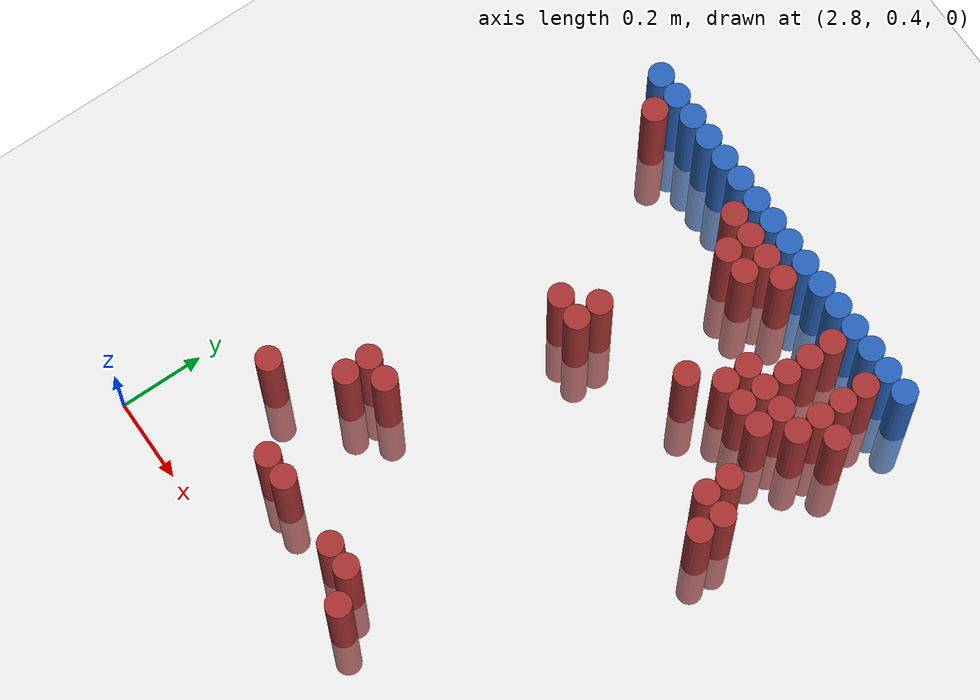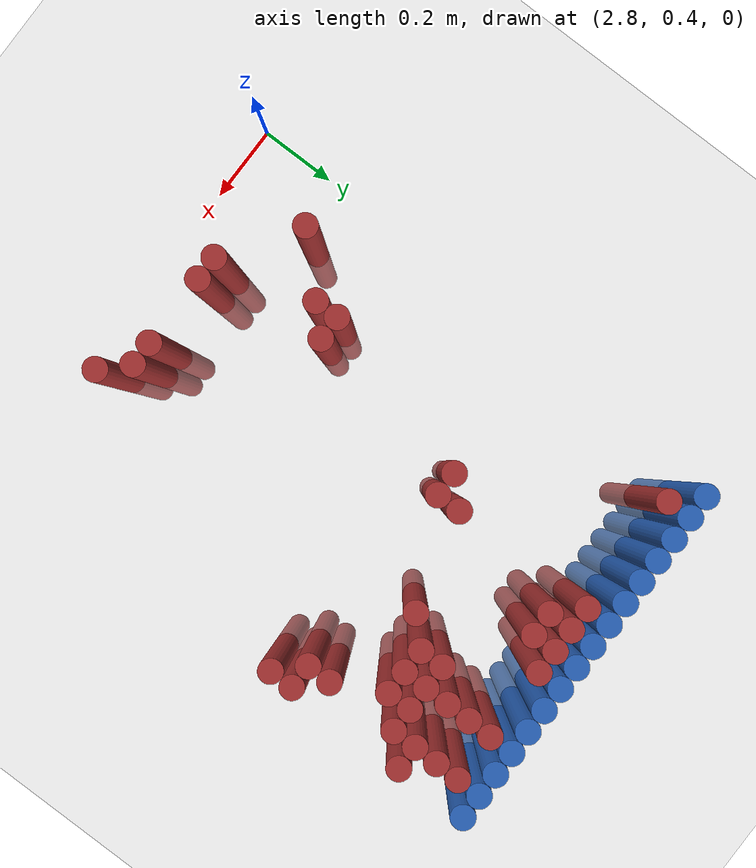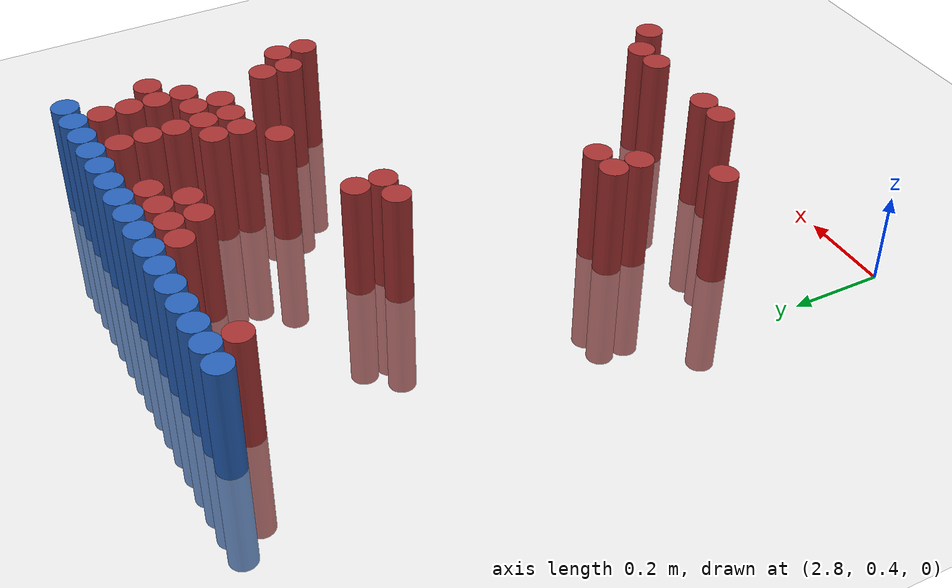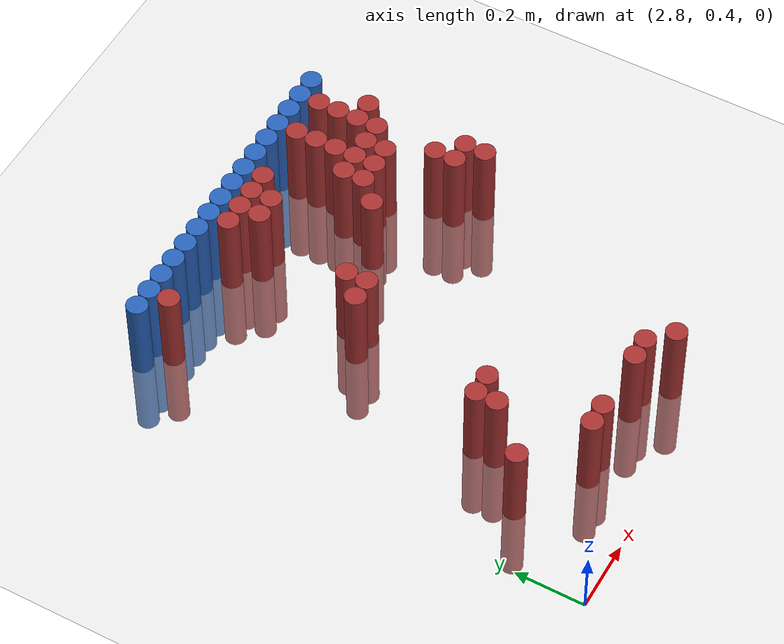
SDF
<sdf version="1.6">
 <world name="default">
  <model name="ground_plane">
   <static>1</static>
   <link name="link">
    <collision name="collision">
     <geometry><plane><normal>0 0 1</normal><size>100 100</size></plane></geometry>
     <surface><friction><ode><mu>100</mu><mu2>50</mu2></ode></friction></surface>
    </collision>
    <visual name="visual">
     <cast_shadows>0</cast_shadows>
     <geometry><plane><normal>0 0 1</normal><size>100 100</size></plane></geometry>
     <material>
      <script><uri>file://media/materials/scripts/gazebo.material</uri><name>Gazebo/Grey</name></script>
     </material>
    </visual>
   </link>
  </model>
  <model name="unit_cylinder_109">
   <static>1</static>
   <pose>2.910000 1.770000 0.000000 0.000000 0.000000 0.000000</pose>
   <link name="link">
    <inertial>
     <mass>1</mass>
     <inertia><ixx>0.145833</ixx><ixy>0</ixy><ixz>0</ixz><iyy>0.145833</iyy><iyz>0</iyz><izz>0.125</izz></inertia>
    </inertial>
    <collision name="collision">
     <geometry><cylinder><radius>0.030000</radius><length>0.5</length></cylinder></geometry>
    </collision>
    <visual name="visual">
     <geometry><cylinder><radius>0.030000</radius><length>0.5</length></cylinder></geometry>
     <material>
      <ambient>0.152000 0.379000 0.720000 1</ambient>
      <diffuse>0.152000 0.379000 0.720000 1</diffuse>
     </material>
     <material>
      <script><name>Gazebo/Grey</name><uri>file://media/materials/scripts/gazebo.material</uri></script>
     </material>
    </visual>
   </link>
  </model>
  <model name="unit_cylinder_110">
   <static>1</static>
   <pose>2.970000 1.770000 0.000000 0.000000 0.000000 0.000000</pose>
   <link name="link">
    <inertial>
     <mass>1</mass>
     <inertia><ixx>0.145833</ixx><ixy>0</ixy><ixz>0</ixz><iyy>0.145833</iyy><iyz>0</iyz><izz>0.125</izz></inertia>
    </inertial>
    <collision name="collision">
     <geometry><cylinder><radius>0.030000</radius><length>0.5</length></cylinder></geometry>
    </collision>
    <visual name="visual">
     <geometry><cylinder><radius>0.030000</radius><length>0.5</length></cylinder></geometry>
     <material>
      <ambient>0.152000 0.379000 0.720000 1</ambient>
      <diffuse>0.152000 0.379000 0.720000 1</diffuse>
     </material>
     <material>
      <script><name>Gazebo/Grey</name><uri>file://media/materials/scripts/gazebo.material</uri></script>
     </material>
    </visual>
   </link>
  </model>
  <model name="unit_cylinder_111">
   <static>1</static>
   <pose>3.030000 1.770000 0.000000 0.000000 0.000000 0.000000</pose>
   <link name="link">
    <inertial>
     <mass>1</mass>
     <inertia><ixx>0.145833</ixx><ixy>0</ixy><ixz>0</ixz><iyy>0.145833</iyy><iyz>0</iyz><izz>0.125</izz></inertia>
    </inertial>
    <collision name="collision">
     <geometry><cylinder><radius>0.030000</radius><length>0.5</length></cylinder></geometry>
    </collision>
    <visual name="visual">
     <geometry><cylinder><radius>0.030000</radius><length>0.5</length></cylinder></geometry>
     <material>
      <ambient>0.152000 0.379000 0.720000 1</ambient>
      <diffuse>0.152000 0.379000 0.720000 1</diffuse>
     </material>
     <material>
      <script><name>Gazebo/Grey</name><uri>file://media/materials/scripts/gazebo.material</uri></script>
     </material>
    </visual>
   </link>
  </model>
  <model name="unit_cylinder_112">
   <static>1</static>
   <pose>3.090000 1.770000 0.000000 0.000000 0.000000 0.000000</pose>
   <link name="link">
    <inertial>
     <mass>1</mass>
     <inertia><ixx>0.145833</ixx><ixy>0</ixy><ixz>0</ixz><iyy>0.145833</iyy><iyz>0</iyz><izz>0.125</izz></inertia>
    </inertial>
    <collision name="collision">
     <geometry><cylinder><radius>0.030000</radius><length>0.5</length></cylinder></geometry>
    </collision>
    <visual name="visual">
     <geometry><cylinder><radius>0.030000</radius><length>0.5</length></cylinder></geometry>
     <material>
      <ambient>0.152000 0.379000 0.720000 1</ambient>
      <diffuse>0.152000 0.379000 0.720000 1</diffuse>
     </material>
     <material>
      <script><name>Gazebo/Grey</name><uri>file://media/materials/scripts/gazebo.material</uri></script>
     </material>
    </visual>
   </link>
  </model>
  <model name="unit_cylinder_113">
   <static>1</static>
   <pose>3.150000 1.770000 0.000000 0.000000 0.000000 0.000000</pose>
   <link name="link">
    <inertial>
     <mass>1</mass>
     <inertia><ixx>0.145833</ixx><ixy>0</ixy><ixz>0</ixz><iyy>0.145833</iyy><iyz>0</iyz><izz>0.125</izz></inertia>
    </inertial>
    <collision name="collision">
     <geometry><cylinder><radius>0.030000</radius><length>0.5</length></cylinder></geometry>
    </collision>
    <visual name="visual">
     <geometry><cylinder><radius>0.030000</radius><length>0.5</length></cylinder></geometry>
     <material>
      <ambient>0.152000 0.379000 0.720000 1</ambient>
      <diffuse>0.152000 0.379000 0.720000 1</diffuse>
     </material>
     <material>
      <script><name>Gazebo/Grey</name><uri>file://media/materials/scripts/gazebo.material</uri></script>
     </material>
    </visual>
   </link>
  </model>
  <model name="unit_cylinder_114">
   <static>1</static>
   <pose>3.210000 1.770000 0.000000 0.000000 0.000000 0.000000</pose>
   <link name="link">
    <inertial>
     <mass>1</mass>
     <inertia><ixx>0.145833</ixx><ixy>0</ixy><ixz>0</ixz><iyy>0.145833</iyy><iyz>0</iyz><izz>0.125</izz></inertia>
    </inertial>
    <collision name="collision">
     <geometry><cylinder><radius>0.030000</radius><length>0.5</length></cylinder></geometry>
    </collision>
    <visual name="visual">
     <geometry><cylinder><radius>0.030000</radius><length>0.5</length></cylinder></geometry>
     <material>
      <ambient>0.152000 0.379000 0.720000 1</ambient>
      <diffuse>0.152000 0.379000 0.720000 1</diffuse>
     </material>
     <material>
      <script><name>Gazebo/Grey</name><uri>file://media/materials/scripts/gazebo.material</uri></script>
     </material>
    </visual>
   </link>
  </model>
  <model name="unit_cylinder_115">
   <static>1</static>
   <pose>3.270000 1.770000 0.000000 0.000000 0.000000 0.000000</pose>
   <link name="link">
    <inertial>
     <mass>1</mass>
     <inertia><ixx>0.145833</ixx><ixy>0</ixy><ixz>0</ixz><iyy>0.145833</iyy><iyz>0</iyz><izz>0.125</izz></inertia>
    </inertial>
    <collision name="collision">
     <geometry><cylinder><radius>0.030000</radius><length>0.5</length></cylinder></geometry>
    </collision>
    <visual name="visual">
     <geometry><cylinder><radius>0.030000</radius><length>0.5</length></cylinder></geometry>
     <material>
      <ambient>0.152000 0.379000 0.720000 1</ambient>
      <diffuse>0.152000 0.379000 0.720000 1</diffuse>
     </material>
     <material>
      <script><name>Gazebo/Grey</name><uri>file://media/materials/scripts/gazebo.material</uri></script>
     </material>
    </visual>
   </link>
  </model>
  <model name="unit_cylinder_116">
   <static>1</static>
   <pose>3.330000 1.770000 0.000000 0.000000 0.000000 0.000000</pose>
   <link name="link">
    <inertial>
     <mass>1</mass>
     <inertia><ixx>0.145833</ixx><ixy>0</ixy><ixz>0</ixz><iyy>0.145833</iyy><iyz>0</iyz><izz>0.125</izz></inertia>
    </inertial>
    <collision name="collision">
     <geometry><cylinder><radius>0.030000</radius><length>0.5</length></cylinder></geometry>
    </collision>
    <visual name="visual">
     <geometry><cylinder><radius>0.030000</radius><length>0.5</length></cylinder></geometry>
     <material>
      <ambient>0.152000 0.379000 0.720000 1</ambient>
      <diffuse>0.152000 0.379000 0.720000 1</diffuse>
     </material>
     <material>
      <script><name>Gazebo/Grey</name><uri>file://media/materials/scripts/gazebo.material</uri></script>
     </material>
    </visual>
   </link>
  </model>
  <model name="unit_cylinder_117">
   <static>1</static>
   <pose>3.390000 1.770000 0.000000 0.000000 0.000000 0.000000</pose>
   <link name="link">
    <inertial>
     <mass>1</mass>
     <inertia><ixx>0.145833</ixx><ixy>0</ixy><ixz>0</ixz><iyy>0.145833</iyy><iyz>0</iyz><izz>0.125</izz></inertia>
    </inertial>
    <collision name="collision">
     <geometry><cylinder><radius>0.030000</radius><length>0.5</length></cylinder></geometry>
    </collision>
    <visual name="visual">
     <geometry><cylinder><radius>0.030000</radius><length>0.5</length></cylinder></geometry>
     <material>
      <ambient>0.152000 0.379000 0.720000 1</ambient>
      <diffuse>0.152000 0.379000 0.720000 1</diffuse>
     </material>
     <material>
      <script><name>Gazebo/Grey</name><uri>file://media/materials/scripts/gazebo.material</uri></script>
     </material>
    </visual>
   </link>
  </model>
  <model name="unit_cylinder_118">
   <static>1</static>
   <pose>3.450000 1.770000 0.000000 0.000000 0.000000 0.000000</pose>
   <link name="link">
    <inertial>
     <mass>1</mass>
     <inertia><ixx>0.145833</ixx><ixy>0</ixy><ixz>0</ixz><iyy>0.145833</iyy><iyz>0</iyz><izz>0.125</izz></inertia>
    </inertial>
    <collision name="collision">
     <geometry><cylinder><radius>0.030000</radius><length>0.5</length></cylinder></geometry>
    </collision>
    <visual name="visual">
     <geometry><cylinder><radius>0.030000</radius><length>0.5</length></cylinder></geometry>
     <material>
      <ambient>0.152000 0.379000 0.720000 1</ambient>
      <diffuse>0.152000 0.379000 0.720000 1</diffuse>
     </material>
     <material>
      <script><name>Gazebo/Grey</name><uri>file://media/materials/scripts/gazebo.material</uri></script>
     </material>
    </visual>
   </link>
  </model>
  <model name="unit_cylinder_119">
   <static>1</static>
   <pose>3.510000 1.770000 0.000000 0.000000 0.000000 0.000000</pose>
   <link name="link">
    <inertial>
     <mass>1</mass>
     <inertia><ixx>0.145833</ixx><ixy>0</ixy><ixz>0</ixz><iyy>0.145833</iyy><iyz>0</iyz><izz>0.125</izz></inertia>
    </inertial>
    <collision name="collision">
     <geometry><cylinder><radius>0.030000</radius><length>0.5</length></cylinder></geometry>
    </collision>
    <visual name="visual">
     <geometry><cylinder><radius>0.030000</radius><length>0.5</length></cylinder></geometry>
     <material>
      <ambient>0.152000 0.379000 0.720000 1</ambient>
      <diffuse>0.152000 0.379000 0.720000 1</diffuse>
     </material>
     <material>
      <script><name>Gazebo/Grey</name><uri>file://media/materials/scripts/gazebo.material</uri></script>
     </material>
    </visual>
   </link>
  </model>
  <model name="unit_cylinder_120">
   <static>1</static>
   <pose>3.570000 1.770000 0.000000 0.000000 0.000000 0.000000</pose>
   <link name="link">
    <inertial>
     <mass>1</mass>
     <inertia><ixx>0.145833</ixx><ixy>0</ixy><ixz>0</ixz><iyy>0.145833</iyy><iyz>0</iyz><izz>0.125</izz></inertia>
    </inertial>
    <collision name="collision">
     <geometry><cylinder><radius>0.030000</radius><length>0.5</length></cylinder></geometry>
    </collision>
    <visual name="visual">
     <geometry><cylinder><radius>0.030000</radius><length>0.5</length></cylinder></geometry>
     <material>
      <ambient>0.152000 0.379000 0.720000 1</ambient>
      <diffuse>0.152000 0.379000 0.720000 1</diffuse>
     </material>
     <material>
      <script><name>Gazebo/Grey</name><uri>file://media/materials/scripts/gazebo.material</uri></script>
     </material>
    </visual>
   </link>
  </model>
  <model name="unit_cylinder_121">
   <static>1</static>
   <pose>3.630000 1.770000 0.000000 0.000000 0.000000 0.000000</pose>
   <link name="link">
    <inertial>
     <mass>1</mass>
     <inertia><ixx>0.145833</ixx><ixy>0</ixy><ixz>0</ixz><iyy>0.145833</iyy><iyz>0</iyz><izz>0.125</izz></inertia>
    </inertial>
    <collision name="collision">
     <geometry><cylinder><radius>0.030000</radius><length>0.5</length></cylinder></geometry>
    </collision>
    <visual name="visual">
     <geometry><cylinder><radius>0.030000</radius><length>0.5</length></cylinder></geometry>
     <material>
      <ambient>0.152000 0.379000 0.720000 1</ambient>
      <diffuse>0.152000 0.379000 0.720000 1</diffuse>
     </material>
     <material>
      <script><name>Gazebo/Grey</name><uri>file://media/materials/scripts/gazebo.material</uri></script>
     </material>
    </visual>
   </link>
  </model>
  <model name="unit_cylinder_122">
   <static>1</static>
   <pose>3.690000 1.770000 0.000000 0.000000 0.000000 0.000000</pose>
   <link name="link">
    <inertial>
     <mass>1</mass>
     <inertia><ixx>0.145833</ixx><ixy>0</ixy><ixz>0</ixz><iyy>0.145833</iyy><iyz>0</iyz><izz>0.125</izz></inertia>
    </inertial>
    <collision name="collision">
     <geometry><cylinder><radius>0.030000</radius><length>0.5</length></cylinder></geometry>
    </collision>
    <visual name="visual">
     <geometry><cylinder><radius>0.030000</radius><length>0.5</length></cylinder></geometry>
     <material>
      <ambient>0.152000 0.379000 0.720000 1</ambient>
      <diffuse>0.152000 0.379000 0.720000 1</diffuse>
     </material>
     <material>
      <script><name>Gazebo/Grey</name><uri>file://media/materials/scripts/gazebo.material</uri></script>
     </material>
    </visual>
   </link>
  </model>
  <model name="unit_cylinder_123">
   <static>1</static>
   <pose>3.750000 1.770000 0.000000 0.000000 0.000000 0.000000</pose>
   <link name="link">
    <inertial>
     <mass>1</mass>
     <inertia><ixx>0.145833</ixx><ixy>0</ixy><ixz>0</ixz><iyy>0.145833</iyy><iyz>0</iyz><izz>0.125</izz></inertia>
    </inertial>
    <collision name="collision">
     <geometry><cylinder><radius>0.030000</radius><length>0.5</length></cylinder></geometry>
    </collision>
    <visual name="visual">
     <geometry><cylinder><radius>0.030000</radius><length>0.5</length></cylinder></geometry>
     <material>
      <ambient>0.152000 0.379000 0.720000 1</ambient>
      <diffuse>0.152000 0.379000 0.720000 1</diffuse>
     </material>
     <material>
      <script><name>Gazebo/Grey</name><uri>file://media/materials/scripts/gazebo.material</uri></script>
     </material>
    </visual>
   </link>
  </model>
  <model name="unit_cylinder_124">
   <static>1</static>
   <pose>3.810000 1.770000 0.000000 0.000000 0.000000 0.000000</pose>
   <link name="link">
    <inertial>
     <mass>1</mass>
     <inertia><ixx>0.145833</ixx><ixy>0</ixy><ixz>0</ixz><iyy>0.145833</iyy><iyz>0</iyz><izz>0.125</izz></inertia>
    </inertial>
    <collision name="collision">
     <geometry><cylinder><radius>0.030000</radius><length>0.5</length></cylinder></geometry>
    </collision>
    <visual name="visual">
     <geometry><cylinder><radius>0.030000</radius><length>0.5</length></cylinder></geometry>
     <material>
      <ambient>0.152000 0.379000 0.720000 1</ambient>
      <diffuse>0.152000 0.379000 0.720000 1</diffuse>
     </material>
     <material>
      <script><name>Gazebo/Grey</name><uri>file://media/materials/scripts/gazebo.material</uri></script>
     </material>
    </visual>
   </link>
  </model>
  <model name="unit_cylinder_132">
   <static>1</static>
   <pose>2.970000 1.710000 0.000000 0.000000 0.000000 0.000000</pose>
   <link name="link">
    <inertial>
     <mass>1</mass>
     <inertia><ixx>0.145833</ixx><ixy>0</ixy><ixz>0</ixz><iyy>0.145833</iyy><iyz>0</iyz><izz>0.125</izz></inertia>
    </inertial>
    <collision name="collision">
     <geometry><cylinder><radius>0.030000</radius><length>0.5</length></cylinder></geometry>
    </collision>
    <visual name="visual">
     <geometry><cylinder><radius>0.030000</radius><length>0.5</length></cylinder></geometry>
     <material>
      <ambient>0.648000 0.192000 0.192000 1</ambient>
      <diffuse>0.648000 0.192000 0.192000 1</diffuse>
     </material>
     <material>
      <script><name>Gazebo/Grey</name><uri>file://media/materials/scripts/gazebo.material</uri></script>
     </material>
    </visual>
   </link>
  </model>
  <model name="unit_cylinder_133">
   <static>1</static>
   <pose>3.270000 1.710000 0.000000 0.000000 0.000000 0.000000</pose>
   <link name="link">
    <inertial>
     <mass>1</mass>
     <inertia><ixx>0.145833</ixx><ixy>0</ixy><ixz>0</ixz><iyy>0.145833</iyy><iyz>0</iyz><izz>0.125</izz></inertia>
    </inertial>
    <collision name="collision">
     <geometry><cylinder><radius>0.030000</radius><length>0.5</length></cylinder></geometry>
    </collision>
    <visual name="visual">
     <geometry><cylinder><radius>0.030000</radius><length>0.5</length></cylinder></geometry>
     <material>
      <ambient>0.648000 0.192000 0.192000 1</ambient>
      <diffuse>0.648000 0.192000 0.192000 1</diffuse>
     </material>
     <material>
      <script><name>Gazebo/Grey</name><uri>file://media/materials/scripts/gazebo.material</uri></script>
     </material>
    </visual>
   </link>
  </model>
  <model name="unit_cylinder_134">
   <static>1</static>
   <pose>3.330000 1.710000 0.000000 0.000000 0.000000 0.000000</pose>
   <link name="link">
    <inertial>
     <mass>1</mass>
     <inertia><ixx>0.145833</ixx><ixy>0</ixy><ixz>0</ixz><iyy>0.145833</iyy><iyz>0</iyz><izz>0.125</izz></inertia>
    </inertial>
    <collision name="collision">
     <geometry><cylinder><radius>0.030000</radius><length>0.5</length></cylinder></geometry>
    </collision>
    <visual name="visual">
     <geometry><cylinder><radius>0.030000</radius><length>0.5</length></cylinder></geometry>
     <material>
      <ambient>0.648000 0.192000 0.192000 1</ambient>
      <diffuse>0.648000 0.192000 0.192000 1</diffuse>
     </material>
     <material>
      <script><name>Gazebo/Grey</name><uri>file://media/materials/scripts/gazebo.material</uri></script>
     </material>
    </visual>
   </link>
  </model>
  <model name="unit_cylinder_135">
   <static>1</static>
   <pose>3.390000 1.710000 0.000000 0.000000 0.000000 0.000000</pose>
   <link name="link">
    <inertial>
     <mass>1</mass>
     <inertia><ixx>0.145833</ixx><ixy>0</ixy><ixz>0</ixz><iyy>0.145833</iyy><iyz>0</iyz><izz>0.125</izz></inertia>
    </inertial>
    <collision name="collision">
     <geometry><cylinder><radius>0.030000</radius><length>0.5</length></cylinder></geometry>
    </collision>
    <visual name="visual">
     <geometry><cylinder><radius>0.030000</radius><length>0.5</length></cylinder></geometry>
     <material>
      <ambient>0.648000 0.192000 0.192000 1</ambient>
      <diffuse>0.648000 0.192000 0.192000 1</diffuse>
     </material>
     <material>
      <script><name>Gazebo/Grey</name><uri>file://media/materials/scripts/gazebo.material</uri></script>
     </material>
    </visual>
   </link>
  </model>
  <model name="unit_cylinder_136">
   <static>1</static>
   <pose>3.450000 1.710000 0.000000 0.000000 0.000000 0.000000</pose>
   <link name="link">
    <inertial>
     <mass>1</mass>
     <inertia><ixx>0.145833</ixx><ixy>0</ixy><ixz>0</ixz><iyy>0.145833</iyy><iyz>0</iyz><izz>0.125</izz></inertia>
    </inertial>
    <collision name="collision">
     <geometry><cylinder><radius>0.030000</radius><length>0.5</length></cylinder></geometry>
    </collision>
    <visual name="visual">
     <geometry><cylinder><radius>0.030000</radius><length>0.5</length></cylinder></geometry>
     <material>
      <ambient>0.648000 0.192000 0.192000 1</ambient>
      <diffuse>0.648000 0.192000 0.192000 1</diffuse>
     </material>
     <material>
      <script><name>Gazebo/Grey</name><uri>file://media/materials/scripts/gazebo.material</uri></script>
     </material>
    </visual>
   </link>
  </model>
  <model name="unit_cylinder_137">
   <static>1</static>
   <pose>3.630000 1.710000 0.000000 0.000000 0.000000 0.000000</pose>
   <link name="link">
    <inertial>
     <mass>1</mass>
     <inertia><ixx>0.145833</ixx><ixy>0</ixy><ixz>0</ixz><iyy>0.145833</iyy><iyz>0</iyz><izz>0.125</izz></inertia>
    </inertial>
    <collision name="collision">
     <geometry><cylinder><radius>0.030000</radius><length>0.5</length></cylinder></geometry>
    </collision>
    <visual name="visual">
     <geometry><cylinder><radius>0.030000</radius><length>0.5</length></cylinder></geometry>
     <material>
      <ambient>0.648000 0.192000 0.192000 1</ambient>
      <diffuse>0.648000 0.192000 0.192000 1</diffuse>
     </material>
     <material>
      <script><name>Gazebo/Grey</name><uri>file://media/materials/scripts/gazebo.material</uri></script>
     </material>
    </visual>
   </link>
  </model>
  <model name="unit_cylinder_138">
   <static>1</static>
   <pose>3.750000 1.710000 0.000000 0.000000 0.000000 0.000000</pose>
   <link name="link">
    <inertial>
     <mass>1</mass>
     <inertia><ixx>0.145833</ixx><ixy>0</ixy><ixz>0</ixz><iyy>0.145833</iyy><iyz>0</iyz><izz>0.125</izz></inertia>
    </inertial>
    <collision name="collision">
     <geometry><cylinder><radius>0.030000</radius><length>0.5</length></cylinder></geometry>
    </collision>
    <visual name="visual">
     <geometry><cylinder><radius>0.030000</radius><length>0.5</length></cylinder></geometry>
     <material>
      <ambient>0.648000 0.192000 0.192000 1</ambient>
      <diffuse>0.648000 0.192000 0.192000 1</diffuse>
     </material>
     <material>
      <script><name>Gazebo/Grey</name><uri>file://media/materials/scripts/gazebo.material</uri></script>
     </material>
    </visual>
   </link>
  </model>
  <model name="unit_cylinder_142">
   <static>1</static>
   <pose>3.330000 1.650000 0.000000 0.000000 0.000000 0.000000</pose>
   <link name="link">
    <inertial>
     <mass>1</mass>
     <inertia><ixx>0.145833</ixx><ixy>0</ixy><ixz>0</ixz><iyy>0.145833</iyy><iyz>0</iyz><izz>0.125</izz></inertia>
    </inertial>
    <collision name="collision">
     <geometry><cylinder><radius>0.030000</radius><length>0.5</length></cylinder></geometry>
    </collision>
    <visual name="visual">
     <geometry><cylinder><radius>0.030000</radius><length>0.5</length></cylinder></geometry>
     <material>
      <ambient>0.648000 0.192000 0.192000 1</ambient>
      <diffuse>0.648000 0.192000 0.192000 1</diffuse>
     </material>
     <material>
      <script><name>Gazebo/Grey</name><uri>file://media/materials/scripts/gazebo.material</uri></script>
     </material>
    </visual>
   </link>
  </model>
  <model name="unit_cylinder_143">
   <static>1</static>
   <pose>3.390000 1.650000 0.000000 0.000000 0.000000 0.000000</pose>
   <link name="link">
    <inertial>
     <mass>1</mass>
     <inertia><ixx>0.145833</ixx><ixy>0</ixy><ixz>0</ixz><iyy>0.145833</iyy><iyz>0</iyz><izz>0.125</izz></inertia>
    </inertial>
    <collision name="collision">
     <geometry><cylinder><radius>0.030000</radius><length>0.5</length></cylinder></geometry>
    </collision>
    <visual name="visual">
     <geometry><cylinder><radius>0.030000</radius><length>0.5</length></cylinder></geometry>
     <material>
      <ambient>0.648000 0.192000 0.192000 1</ambient>
      <diffuse>0.648000 0.192000 0.192000 1</diffuse>
     </material>
     <material>
      <script><name>Gazebo/Grey</name><uri>file://media/materials/scripts/gazebo.material</uri></script>
     </material>
    </visual>
   </link>
  </model>
  <model name="unit_cylinder_144">
   <static>1</static>
   <pose>3.630000 1.650000 0.000000 0.000000 0.000000 0.000000</pose>
   <link name="link">
    <inertial>
     <mass>1</mass>
     <inertia><ixx>0.145833</ixx><ixy>0</ixy><ixz>0</ixz><iyy>0.145833</iyy><iyz>0</iyz><izz>0.125</izz></inertia>
    </inertial>
    <collision name="collision">
     <geometry><cylinder><radius>0.030000</radius><length>0.5</length></cylinder></geometry>
    </collision>
    <visual name="visual">
     <geometry><cylinder><radius>0.030000</radius><length>0.5</length></cylinder></geometry>
     <material>
      <ambient>0.648000 0.192000 0.192000 1</ambient>
      <diffuse>0.648000 0.192000 0.192000 1</diffuse>
     </material>
     <material>
      <script><name>Gazebo/Grey</name><uri>file://media/materials/scripts/gazebo.material</uri></script>
     </material>
    </visual>
   </link>
  </model>
  <model name="unit_cylinder_145">
   <static>1</static>
   <pose>3.750000 1.650000 0.000000 0.000000 0.000000 0.000000</pose>
   <link name="link">
    <inertial>
     <mass>1</mass>
     <inertia><ixx>0.145833</ixx><ixy>0</ixy><ixz>0</ixz><iyy>0.145833</iyy><iyz>0</iyz><izz>0.125</izz></inertia>
    </inertial>
    <collision name="collision">
     <geometry><cylinder><radius>0.030000</radius><length>0.5</length></cylinder></geometry>
    </collision>
    <visual name="visual">
     <geometry><cylinder><radius>0.030000</radius><length>0.5</length></cylinder></geometry>
     <material>
      <ambient>0.648000 0.192000 0.192000 1</ambient>
      <diffuse>0.648000 0.192000 0.192000 1</diffuse>
     </material>
     <material>
      <script><name>Gazebo/Grey</name><uri>file://media/materials/scripts/gazebo.material</uri></script>
     </material>
    </visual>
   </link>
  </model>
  <model name="unit_cylinder_147">
   <static>1</static>
   <pose>3.630000 1.590000 0.000000 0.000000 0.000000 0.000000</pose>
   <link name="link">
    <inertial>
     <mass>1</mass>
     <inertia><ixx>0.145833</ixx><ixy>0</ixy><ixz>0</ixz><iyy>0.145833</iyy><iyz>0</iyz><izz>0.125</izz></inertia>
    </inertial>
    <collision name="collision">
     <geometry><cylinder><radius>0.030000</radius><length>0.5</length></cylinder></geometry>
    </collision>
    <visual name="visual">
     <geometry><cylinder><radius>0.030000</radius><length>0.5</length></cylinder></geometry>
     <material>
      <ambient>0.648000 0.192000 0.192000 1</ambient>
      <diffuse>0.648000 0.192000 0.192000 1</diffuse>
     </material>
     <material>
      <script><name>Gazebo/Grey</name><uri>file://media/materials/scripts/gazebo.material</uri></script>
     </material>
    </visual>
   </link>
  </model>
  <model name="unit_cylinder_148">
   <static>1</static>
   <pose>3.750000 1.590000 0.000000 0.000000 0.000000 0.000000</pose>
   <link name="link">
    <inertial>
     <mass>1</mass>
     <inertia><ixx>0.145833</ixx><ixy>0</ixy><ixz>0</ixz><iyy>0.145833</iyy><iyz>0</iyz><izz>0.125</izz></inertia>
    </inertial>
    <collision name="collision">
     <geometry><cylinder><radius>0.030000</radius><length>0.5</length></cylinder></geometry>
    </collision>
    <visual name="visual">
     <geometry><cylinder><radius>0.030000</radius><length>0.5</length></cylinder></geometry>
     <material>
      <ambient>0.648000 0.192000 0.192000 1</ambient>
      <diffuse>0.648000 0.192000 0.192000 1</diffuse>
     </material>
     <material>
      <script><name>Gazebo/Grey</name><uri>file://media/materials/scripts/gazebo.material</uri></script>
     </material>
    </visual>
   </link>
  </model>
  <model name="unit_cylinder_149">
   <static>1</static>
   <pose>3.810000 1.590000 0.000000 0.000000 0.000000 0.000000</pose>
   <link name="link">
    <inertial>
     <mass>1</mass>
     <inertia><ixx>0.145833</ixx><ixy>0</ixy><ixz>0</ixz><iyy>0.145833</iyy><iyz>0</iyz><izz>0.125</izz></inertia>
    </inertial>
    <collision name="collision">
     <geometry><cylinder><radius>0.030000</radius><length>0.5</length></cylinder></geometry>
    </collision>
    <visual name="visual">
     <geometry><cylinder><radius>0.030000</radius><length>0.5</length></cylinder></geometry>
     <material>
      <ambient>0.648000 0.192000 0.192000 1</ambient>
      <diffuse>0.648000 0.192000 0.192000 1</diffuse>
     </material>
     <material>
      <script><name>Gazebo/Grey</name><uri>file://media/materials/scripts/gazebo.material</uri></script>
     </material>
    </visual>
   </link>
  </model>
  <model name="unit_cylinder_156">
   <static>1</static>
   <pose>3.570000 1.530000 0.000000 0.000000 0.000000 0.000000</pose>
   <link name="link">
    <inertial>
     <mass>1</mass>
     <inertia><ixx>0.145833</ixx><ixy>0</ixy><ixz>0</ixz><iyy>0.145833</iyy><iyz>0</iyz><izz>0.125</izz></inertia>
    </inertial>
    <collision name="collision">
     <geometry><cylinder><radius>0.030000</radius><length>0.5</length></cylinder></geometry>
    </collision>
    <visual name="visual">
     <geometry><cylinder><radius>0.030000</radius><length>0.5</length></cylinder></geometry>
     <material>
      <ambient>0.648000 0.192000 0.192000 1</ambient>
      <diffuse>0.648000 0.192000 0.192000 1</diffuse>
     </material>
     <material>
      <script><name>Gazebo/Grey</name><uri>file://media/materials/scripts/gazebo.material</uri></script>
     </material>
    </visual>
   </link>
  </model>
  <model name="unit_cylinder_157">
   <static>1</static>
   <pose>3.630000 1.530000 0.000000 0.000000 0.000000 0.000000</pose>
   <link name="link">
    <inertial>
     <mass>1</mass>
     <inertia><ixx>0.145833</ixx><ixy>0</ixy><ixz>0</ixz><iyy>0.145833</iyy><iyz>0</iyz><izz>0.125</izz></inertia>
    </inertial>
    <collision name="collision">
     <geometry><cylinder><radius>0.030000</radius><length>0.5</length></cylinder></geometry>
    </collision>
    <visual name="visual">
     <geometry><cylinder><radius>0.030000</radius><length>0.5</length></cylinder></geometry>
     <material>
      <ambient>0.648000 0.192000 0.192000 1</ambient>
      <diffuse>0.648000 0.192000 0.192000 1</diffuse>
     </material>
     <material>
      <script><name>Gazebo/Grey</name><uri>file://media/materials/scripts/gazebo.material</uri></script>
     </material>
    </visual>
   </link>
  </model>
  <model name="unit_cylinder_158">
   <static>1</static>
   <pose>3.690000 1.530000 0.000000 0.000000 0.000000 0.000000</pose>
   <link name="link">
    <inertial>
     <mass>1</mass>
     <inertia><ixx>0.145833</ixx><ixy>0</ixy><ixz>0</ixz><iyy>0.145833</iyy><iyz>0</iyz><izz>0.125</izz></inertia>
    </inertial>
    <collision name="collision">
     <geometry><cylinder><radius>0.030000</radius><length>0.5</length></cylinder></geometry>
    </collision>
    <visual name="visual">
     <geometry><cylinder><radius>0.030000</radius><length>0.5</length></cylinder></geometry>
     <material>
      <ambient>0.648000 0.192000 0.192000 1</ambient>
      <diffuse>0.648000 0.192000 0.192000 1</diffuse>
     </material>
     <material>
      <script><name>Gazebo/Grey</name><uri>file://media/materials/scripts/gazebo.material</uri></script>
     </material>
    </visual>
   </link>
  </model>
  <model name="unit_cylinder_159">
   <static>1</static>
   <pose>3.750000 1.530000 0.000000 0.000000 0.000000 0.000000</pose>
   <link name="link">
    <inertial>
     <mass>1</mass>
     <inertia><ixx>0.145833</ixx><ixy>0</ixy><ixz>0</ixz><iyy>0.145833</iyy><iyz>0</iyz><izz>0.125</izz></inertia>
    </inertial>
    <collision name="collision">
     <geometry><cylinder><radius>0.030000</radius><length>0.5</length></cylinder></geometry>
    </collision>
    <visual name="visual">
     <geometry><cylinder><radius>0.030000</radius><length>0.5</length></cylinder></geometry>
     <material>
      <ambient>0.648000 0.192000 0.192000 1</ambient>
      <diffuse>0.648000 0.192000 0.192000 1</diffuse>
     </material>
     <material>
      <script><name>Gazebo/Grey</name><uri>file://media/materials/scripts/gazebo.material</uri></script>
     </material>
    </visual>
   </link>
  </model>
  <model name="unit_cylinder_164">
   <static>1</static>
   <pose>3.570000 1.470000 0.000000 0.000000 0.000000 0.000000</pose>
   <link name="link">
    <inertial>
     <mass>1</mass>
     <inertia><ixx>0.145833</ixx><ixy>0</ixy><ixz>0</ixz><iyy>0.145833</iyy><iyz>0</iyz><izz>0.125</izz></inertia>
    </inertial>
    <collision name="collision">
     <geometry><cylinder><radius>0.030000</radius><length>0.5</length></cylinder></geometry>
    </collision>
    <visual name="visual">
     <geometry><cylinder><radius>0.030000</radius><length>0.5</length></cylinder></geometry>
     <material>
      <ambient>0.648000 0.192000 0.192000 1</ambient>
      <diffuse>0.648000 0.192000 0.192000 1</diffuse>
     </material>
     <material>
      <script><name>Gazebo/Grey</name><uri>file://media/materials/scripts/gazebo.material</uri></script>
     </material>
    </visual>
   </link>
  </model>
  <model name="unit_cylinder_165">
   <static>1</static>
   <pose>3.630000 1.470000 0.000000 0.000000 0.000000 0.000000</pose>
   <link name="link">
    <inertial>
     <mass>1</mass>
     <inertia><ixx>0.145833</ixx><ixy>0</ixy><ixz>0</ixz><iyy>0.145833</iyy><iyz>0</iyz><izz>0.125</izz></inertia>
    </inertial>
    <collision name="collision">
     <geometry><cylinder><radius>0.030000</radius><length>0.5</length></cylinder></geometry>
    </collision>
    <visual name="visual">
     <geometry><cylinder><radius>0.030000</radius><length>0.5</length></cylinder></geometry>
     <material>
      <ambient>0.648000 0.192000 0.192000 1</ambient>
      <diffuse>0.648000 0.192000 0.192000 1</diffuse>
     </material>
     <material>
      <script><name>Gazebo/Grey</name><uri>file://media/materials/scripts/gazebo.material</uri></script>
     </material>
    </visual>
   </link>
  </model>
  <model name="unit_cylinder_166">
   <static>1</static>
   <pose>3.690000 1.470000 0.000000 0.000000 0.000000 0.000000</pose>
   <link name="link">
    <inertial>
     <mass>1</mass>
     <inertia><ixx>0.145833</ixx><ixy>0</ixy><ixz>0</ixz><iyy>0.145833</iyy><iyz>0</iyz><izz>0.125</izz></inertia>
    </inertial>
    <collision name="collision">
     <geometry><cylinder><radius>0.030000</radius><length>0.5</length></cylinder></geometry>
    </collision>
    <visual name="visual">
     <geometry><cylinder><radius>0.030000</radius><length>0.5</length></cylinder></geometry>
     <material>
      <ambient>0.648000 0.192000 0.192000 1</ambient>
      <diffuse>0.648000 0.192000 0.192000 1</diffuse>
     </material>
     <material>
      <script><name>Gazebo/Grey</name><uri>file://media/materials/scripts/gazebo.material</uri></script>
     </material>
    </visual>
   </link>
  </model>
  <model name="unit_cylinder_173">
   <static>1</static>
   <pose>3.510000 1.410000 0.000000 0.000000 0.000000 0.000000</pose>
   <link name="link">
    <inertial>
     <mass>1</mass>
     <inertia><ixx>0.145833</ixx><ixy>0</ixy><ixz>0</ixz><iyy>0.145833</iyy><iyz>0</iyz><izz>0.125</izz></inertia>
    </inertial>
    <collision name="collision">
     <geometry><cylinder><radius>0.030000</radius><length>0.5</length></cylinder></geometry>
    </collision>
    <visual name="visual">
     <geometry><cylinder><radius>0.030000</radius><length>0.5</length></cylinder></geometry>
     <material>
      <ambient>0.648000 0.192000 0.192000 1</ambient>
      <diffuse>0.648000 0.192000 0.192000 1</diffuse>
     </material>
     <material>
      <script><name>Gazebo/Grey</name><uri>file://media/materials/scripts/gazebo.material</uri></script>
     </material>
    </visual>
   </link>
  </model>
  <model name="unit_cylinder_180">
   <static>1</static>
   <pose>3.270000 1.350000 0.000000 0.000000 0.000000 0.000000</pose>
   <link name="link">
    <inertial>
     <mass>1</mass>
     <inertia><ixx>0.145833</ixx><ixy>0</ixy><ixz>0</ixz><iyy>0.145833</iyy><iyz>0</iyz><izz>0.125</izz></inertia>
    </inertial>
    <collision name="collision">
     <geometry><cylinder><radius>0.030000</radius><length>0.5</length></cylinder></geometry>
    </collision>
    <visual name="visual">
     <geometry><cylinder><radius>0.030000</radius><length>0.5</length></cylinder></geometry>
     <material>
      <ambient>0.648000 0.192000 0.192000 1</ambient>
      <diffuse>0.648000 0.192000 0.192000 1</diffuse>
     </material>
     <material>
      <script><name>Gazebo/Grey</name><uri>file://media/materials/scripts/gazebo.material</uri></script>
     </material>
    </visual>
   </link>
  </model>
  <model name="unit_cylinder_181">
   <static>1</static>
   <pose>3.750000 1.350000 0.000000 0.000000 0.000000 0.000000</pose>
   <link name="link">
    <inertial>
     <mass>1</mass>
     <inertia><ixx>0.145833</ixx><ixy>0</ixy><ixz>0</ixz><iyy>0.145833</iyy><iyz>0</iyz><izz>0.125</izz></inertia>
    </inertial>
    <collision name="collision">
     <geometry><cylinder><radius>0.030000</radius><length>0.5</length></cylinder></geometry>
    </collision>
    <visual name="visual">
     <geometry><cylinder><radius>0.030000</radius><length>0.5</length></cylinder></geometry>
     <material>
      <ambient>0.648000 0.192000 0.192000 1</ambient>
      <diffuse>0.648000 0.192000 0.192000 1</diffuse>
     </material>
     <material>
      <script><name>Gazebo/Grey</name><uri>file://media/materials/scripts/gazebo.material</uri></script>
     </material>
    </visual>
   </link>
  </model>
  <model name="unit_cylinder_187">
   <static>1</static>
   <pose>3.210000 1.290000 0.000000 0.000000 0.000000 0.000000</pose>
   <link name="link">
    <inertial>
     <mass>1</mass>
     <inertia><ixx>0.145833</ixx><ixy>0</ixy><ixz>0</ixz><iyy>0.145833</iyy><iyz>0</iyz><izz>0.125</izz></inertia>
    </inertial>
    <collision name="collision">
     <geometry><cylinder><radius>0.030000</radius><length>0.5</length></cylinder></geometry>
    </collision>
    <visual name="visual">
     <geometry><cylinder><radius>0.030000</radius><length>0.5</length></cylinder></geometry>
     <material>
      <ambient>0.648000 0.192000 0.192000 1</ambient>
      <diffuse>0.648000 0.192000 0.192000 1</diffuse>
     </material>
     <material>
      <script><name>Gazebo/Grey</name><uri>file://media/materials/scripts/gazebo.material</uri></script>
     </material>
    </visual>
   </link>
  </model>
  <model name="unit_cylinder_188">
   <static>1</static>
   <pose>3.270000 1.290000 0.000000 0.000000 0.000000 0.000000</pose>
   <link name="link">
    <inertial>
     <mass>1</mass>
     <inertia><ixx>0.145833</ixx><ixy>0</ixy><ixz>0</ixz><iyy>0.145833</iyy><iyz>0</iyz><izz>0.125</izz></inertia>
    </inertial>
    <collision name="collision">
     <geometry><cylinder><radius>0.030000</radius><length>0.5</length></cylinder></geometry>
    </collision>
    <visual name="visual">
     <geometry><cylinder><radius>0.030000</radius><length>0.5</length></cylinder></geometry>
     <material>
      <ambient>0.648000 0.192000 0.192000 1</ambient>
      <diffuse>0.648000 0.192000 0.192000 1</diffuse>
     </material>
     <material>
      <script><name>Gazebo/Grey</name><uri>file://media/materials/scripts/gazebo.material</uri></script>
     </material>
    </visual>
   </link>
  </model>
  <model name="unit_cylinder_189">
   <static>1</static>
   <pose>3.750000 1.290000 0.000000 0.000000 0.000000 0.000000</pose>
   <link name="link">
    <inertial>
     <mass>1</mass>
     <inertia><ixx>0.145833</ixx><ixy>0</ixy><ixz>0</ixz><iyy>0.145833</iyy><iyz>0</iyz><izz>0.125</izz></inertia>
    </inertial>
    <collision name="collision">
     <geometry><cylinder><radius>0.030000</radius><length>0.5</length></cylinder></geometry>
    </collision>
    <visual name="visual">
     <geometry><cylinder><radius>0.030000</radius><length>0.5</length></cylinder></geometry>
     <material>
      <ambient>0.648000 0.192000 0.192000 1</ambient>
      <diffuse>0.648000 0.192000 0.192000 1</diffuse>
     </material>
     <material>
      <script><name>Gazebo/Grey</name><uri>file://media/materials/scripts/gazebo.material</uri></script>
     </material>
    </visual>
   </link>
  </model>
  <model name="unit_cylinder_190">
   <static>1</static>
   <pose>3.810000 1.290000 0.000000 0.000000 0.000000 0.000000</pose>
   <link name="link">
    <inertial>
     <mass>1</mass>
     <inertia><ixx>0.145833</ixx><ixy>0</ixy><ixz>0</ixz><iyy>0.145833</iyy><iyz>0</iyz><izz>0.125</izz></inertia>
    </inertial>
    <collision name="collision">
     <geometry><cylinder><radius>0.030000</radius><length>0.5</length></cylinder></geometry>
    </collision>
    <visual name="visual">
     <geometry><cylinder><radius>0.030000</radius><length>0.5</length></cylinder></geometry>
     <material>
      <ambient>0.648000 0.192000 0.192000 1</ambient>
      <diffuse>0.648000 0.192000 0.192000 1</diffuse>
     </material>
     <material>
      <script><name>Gazebo/Grey</name><uri>file://media/materials/scripts/gazebo.material</uri></script>
     </material>
    </visual>
   </link>
  </model>
  <model name="unit_cylinder_192">
   <static>1</static>
   <pose>3.810000 1.230000 0.000000 0.000000 0.000000 0.000000</pose>
   <link name="link">
    <inertial>
     <mass>1</mass>
     <inertia><ixx>0.145833</ixx><ixy>0</ixy><ixz>0</ixz><iyy>0.145833</iyy><iyz>0</iyz><izz>0.125</izz></inertia>
    </inertial>
    <collision name="collision">
     <geometry><cylinder><radius>0.030000</radius><length>0.5</length></cylinder></geometry>
    </collision>
    <visual name="visual">
     <geometry><cylinder><radius>0.030000</radius><length>0.5</length></cylinder></geometry>
     <material>
      <ambient>0.648000 0.192000 0.192000 1</ambient>
      <diffuse>0.648000 0.192000 0.192000 1</diffuse>
     </material>
     <material>
      <script><name>Gazebo/Grey</name><uri>file://media/materials/scripts/gazebo.material</uri></script>
     </material>
    </visual>
   </link>
  </model>
  <model name="unit_cylinder_193">
   <static>1</static>
   <pose>3.090000 0.870000 0.000000 0.000000 0.000000 0.000000</pose>
   <link name="link">
    <inertial>
     <mass>1</mass>
     <inertia><ixx>0.145833</ixx><ixy>0</ixy><ixz>0</ixz><iyy>0.145833</iyy><iyz>0</iyz><izz>0.125</izz></inertia>
    </inertial>
    <collision name="collision">
     <geometry><cylinder><radius>0.030000</radius><length>0.5</length></cylinder></geometry>
    </collision>
    <visual name="visual">
     <geometry><cylinder><radius>0.030000</radius><length>0.5</length></cylinder></geometry>
     <material>
      <ambient>0.648000 0.192000 0.192000 1</ambient>
      <diffuse>0.648000 0.192000 0.192000 1</diffuse>
     </material>
     <material>
      <script><name>Gazebo/Grey</name><uri>file://media/materials/scripts/gazebo.material</uri></script>
     </material>
    </visual>
   </link>
  </model>
  <model name="unit_cylinder_194">
   <static>1</static>
   <pose>3.150000 0.870000 0.000000 0.000000 0.000000 0.000000</pose>
   <link name="link">
    <inertial>
     <mass>1</mass>
     <inertia><ixx>0.145833</ixx><ixy>0</ixy><ixz>0</ixz><iyy>0.145833</iyy><iyz>0</iyz><izz>0.125</izz></inertia>
    </inertial>
    <collision name="collision">
     <geometry><cylinder><radius>0.030000</radius><length>0.5</length></cylinder></geometry>
    </collision>
    <visual name="visual">
     <geometry><cylinder><radius>0.030000</radius><length>0.5</length></cylinder></geometry>
     <material>
      <ambient>0.648000 0.192000 0.192000 1</ambient>
      <diffuse>0.648000 0.192000 0.192000 1</diffuse>
     </material>
     <material>
      <script><name>Gazebo/Grey</name><uri>file://media/materials/scripts/gazebo.material</uri></script>
     </material>
    </visual>
   </link>
  </model>
  <model name="unit_cylinder_196">
   <static>1</static>
   <pose>3.090000 0.810000 0.000000 0.000000 0.000000 0.000000</pose>
   <link name="link">
    <inertial>
     <mass>1</mass>
     <inertia><ixx>0.145833</ixx><ixy>0</ixy><ixz>0</ixz><iyy>0.145833</iyy><iyz>0</iyz><izz>0.125</izz></inertia>
    </inertial>
    <collision name="collision">
     <geometry><cylinder><radius>0.030000</radius><length>0.5</length></cylinder></geometry>
    </collision>
    <visual name="visual">
     <geometry><cylinder><radius>0.030000</radius><length>0.5</length></cylinder></geometry>
     <material>
      <ambient>0.648000 0.192000 0.192000 1</ambient>
      <diffuse>0.648000 0.192000 0.192000 1</diffuse>
     </material>
     <material>
      <script><name>Gazebo/Grey</name><uri>file://media/materials/scripts/gazebo.material</uri></script>
     </material>
    </visual>
   </link>
  </model>
  <model name="unit_cylinder_203">
   <static>1</static>
   <pose>2.970000 0.690000 0.000000 0.000000 0.000000 0.000000</pose>
   <link name="link">
    <inertial>
     <mass>1</mass>
     <inertia><ixx>0.145833</ixx><ixy>0</ixy><ixz>0</ixz><iyy>0.145833</iyy><iyz>0</iyz><izz>0.125</izz></inertia>
    </inertial>
    <collision name="collision">
     <geometry><cylinder><radius>0.030000</radius><length>0.5</length></cylinder></geometry>
    </collision>
    <visual name="visual">
     <geometry><cylinder><radius>0.030000</radius><length>0.5</length></cylinder></geometry>
     <material>
      <ambient>0.648000 0.192000 0.192000 1</ambient>
      <diffuse>0.648000 0.192000 0.192000 1</diffuse>
     </material>
     <material>
      <script><name>Gazebo/Grey</name><uri>file://media/materials/scripts/gazebo.material</uri></script>
     </material>
    </visual>
   </link>
  </model>
  <model name="unit_cylinder_206">
   <static>1</static>
   <pose>3.150000 0.570000 0.000000 0.000000 0.000000 0.000000</pose>
   <link name="link">
    <inertial>
     <mass>1</mass>
     <inertia><ixx>0.145833</ixx><ixy>0</ixy><ixz>0</ixz><iyy>0.145833</iyy><iyz>0</iyz><izz>0.125</izz></inertia>
    </inertial>
    <collision name="collision">
     <geometry><cylinder><radius>0.030000</radius><length>0.5</length></cylinder></geometry>
    </collision>
    <visual name="visual">
     <geometry><cylinder><radius>0.030000</radius><length>0.5</length></cylinder></geometry>
     <material>
      <ambient>0.648000 0.192000 0.192000 1</ambient>
      <diffuse>0.648000 0.192000 0.192000 1</diffuse>
     </material>
     <material>
      <script><name>Gazebo/Grey</name><uri>file://media/materials/scripts/gazebo.material</uri></script>
     </material>
    </visual>
   </link>
  </model>
  <model name="unit_cylinder_207">
   <static>1</static>
   <pose>3.210000 0.570000 0.000000 0.000000 0.000000 0.000000</pose>
   <link name="link">
    <inertial>
     <mass>1</mass>
     <inertia><ixx>0.145833</ixx><ixy>0</ixy><ixz>0</ixz><iyy>0.145833</iyy><iyz>0</iyz><izz>0.125</izz></inertia>
    </inertial>
    <collision name="collision">
     <geometry><cylinder><radius>0.030000</radius><length>0.5</length></cylinder></geometry>
    </collision>
    <visual name="visual">
     <geometry><cylinder><radius>0.030000</radius><length>0.5</length></cylinder></geometry>
     <material>
      <ambient>0.648000 0.192000 0.192000 1</ambient>
      <diffuse>0.648000 0.192000 0.192000 1</diffuse>
     </material>
     <material>
      <script><name>Gazebo/Grey</name><uri>file://media/materials/scripts/gazebo.material</uri></script>
     </material>
    </visual>
   </link>
  </model>
  <model name="unit_cylinder_208">
   <static>1</static>
   <pose>3.390000 0.570000 0.000000 0.000000 0.000000 0.000000</pose>
   <link name="link">
    <inertial>
     <mass>1</mass>
     <inertia><ixx>0.145833</ixx><ixy>0</ixy><ixz>0</ixz><iyy>0.145833</iyy><iyz>0</iyz><izz>0.125</izz></inertia>
    </inertial>
    <collision name="collision">
     <geometry><cylinder><radius>0.030000</radius><length>0.5</length></cylinder></geometry>
    </collision>
    <visual name="visual">
     <geometry><cylinder><radius>0.030000</radius><length>0.5</length></cylinder></geometry>
     <material>
      <ambient>0.648000 0.192000 0.192000 1</ambient>
      <diffuse>0.648000 0.192000 0.192000 1</diffuse>
     </material>
     <material>
      <script><name>Gazebo/Grey</name><uri>file://media/materials/scripts/gazebo.material</uri></script>
     </material>
    </visual>
   </link>
  </model>
  <model name="unit_cylinder_209">
   <static>1</static>
   <pose>3.450000 0.570000 0.000000 0.000000 0.000000 0.000000</pose>
   <link name="link">
    <inertial>
     <mass>1</mass>
     <inertia><ixx>0.145833</ixx><ixy>0</ixy><ixz>0</ixz><iyy>0.145833</iyy><iyz>0</iyz><izz>0.125</izz></inertia>
    </inertial>
    <collision name="collision">
     <geometry><cylinder><radius>0.030000</radius><length>0.5</length></cylinder></geometry>
    </collision>
    <visual name="visual">
     <geometry><cylinder><radius>0.030000</radius><length>0.5</length></cylinder></geometry>
     <material>
      <ambient>0.648000 0.192000 0.192000 1</ambient>
      <diffuse>0.648000 0.192000 0.192000 1</diffuse>
     </material>
     <material>
      <script><name>Gazebo/Grey</name><uri>file://media/materials/scripts/gazebo.material</uri></script>
     </material>
    </visual>
   </link>
  </model>
  <model name="unit_cylinder_214">
   <static>1</static>
   <pose>3.510000 0.510000 0.000000 0.000000 0.000000 0.000000</pose>
   <link name="link">
    <inertial>
     <mass>1</mass>
     <inertia><ixx>0.145833</ixx><ixy>0</ixy><ixz>0</ixz><iyy>0.145833</iyy><iyz>0</iyz><izz>0.125</izz></inertia>
    </inertial>
    <collision name="collision">
     <geometry><cylinder><radius>0.030000</radius><length>0.5</length></cylinder></geometry>
    </collision>
    <visual name="visual">
     <geometry><cylinder><radius>0.030000</radius><length>0.5</length></cylinder></geometry>
     <material>
      <ambient>0.648000 0.192000 0.192000 1</ambient>
      <diffuse>0.648000 0.192000 0.192000 1</diffuse>
     </material>
     <material>
      <script><name>Gazebo/Grey</name><uri>file://media/materials/scripts/gazebo.material</uri></script>
     </material>
    </visual>
   </link>
  </model>
 </world>
</sdf>
